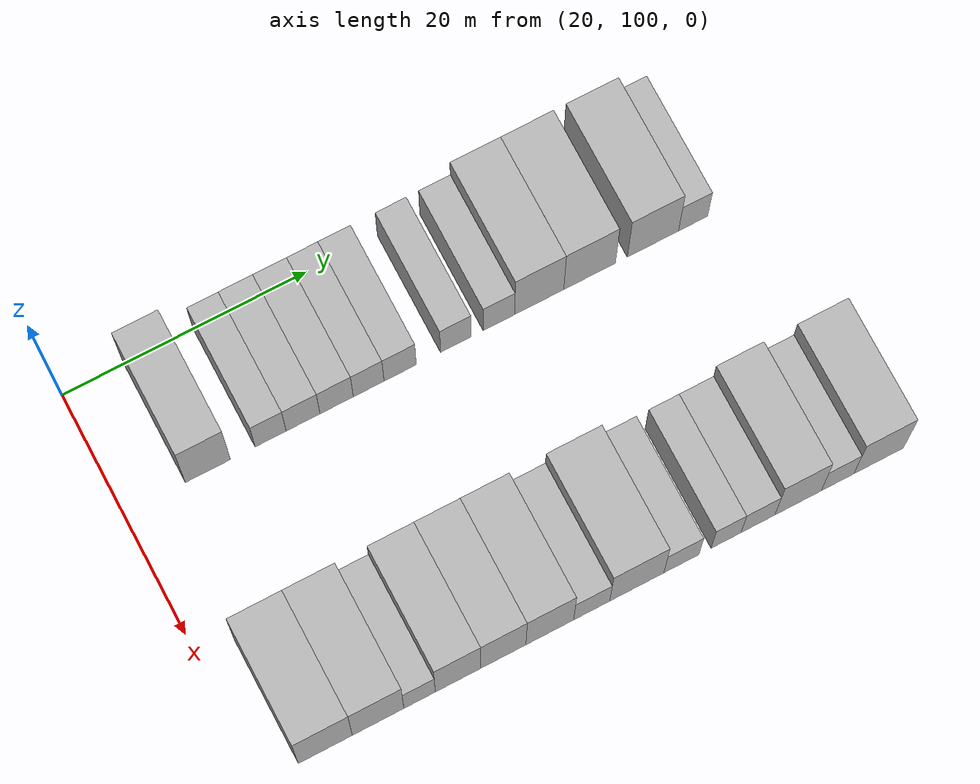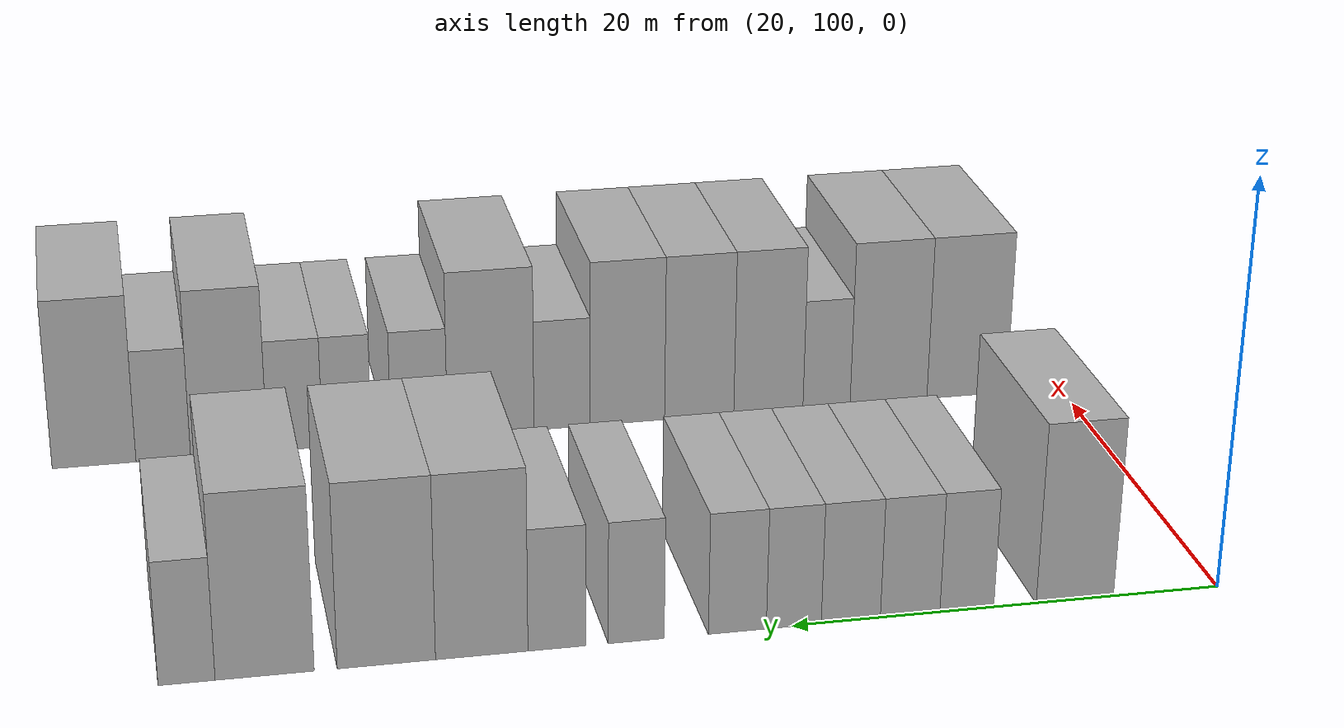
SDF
<sdf version="1.6">
 <world name="default">
  <model name="building_81">
   <static>1</static>
   <pose>25.0000 106.8358 0 0.000000 0.000000 0.000000</pose>
   <link name="link">
    <pose>0 0 4.50 0 0 0</pose>
    <collision name="collision"><geometry><box><size>10.0000 3.6615 9.0000</size></box></geometry></collision>
    <visual name="visual">
     <cast_shadows>0</cast_shadows>
     <geometry><box><size>10.0000 3.6615 9.0000</size></box></geometry>
     <material>
      <script>
       <uri>model://HANNAS_wall/materials/scripts</uri>
       <uri>model://HANNAS_wall/materials/textures</uri>
       <name>vrc/HANNAS_wall</name>
      </script>
     </material>
    </visual>
   </link>
  </model>
  <model name="building_82">
   <static>1</static>
   <pose>25.0000 111.9291 0 0.000000 0.000000 0.000000</pose>
   <link name="link">
    <pose>0 0 3.00 0 0 0</pose>
    <collision name="collision"><geometry><box><size>10.0000 2.5251 6.0000</size></box></geometry></collision>
    <visual name="visual">
     <cast_shadows>0</cast_shadows>
     <geometry><box><size>10.0000 2.5251 6.0000</size></box></geometry>
     <material>
      <script>
       <uri>model://HANNAS_wall/materials/scripts</uri>
       <uri>model://HANNAS_wall/materials/textures</uri>
       <name>vrc/HANNAS_wall</name>
      </script>
     </material>
    </visual>
   </link>
  </model>
  <model name="building_83">
   <static>1</static>
   <pose>25.0000 114.5763 0 0.000000 0.000000 0.000000</pose>
   <link name="link">
    <pose>0 0 3.00 0 0 0</pose>
    <collision name="collision"><geometry><box><size>10.0000 2.7694 6.0000</size></box></geometry></collision>
    <visual name="visual">
     <cast_shadows>0</cast_shadows>
     <geometry><box><size>10.0000 2.7694 6.0000</size></box></geometry>
     <material>
      <script>
       <uri>model://HANNAS_wall/materials/scripts</uri>
       <uri>model://HANNAS_wall/materials/textures</uri>
       <name>vrc/HANNAS_wall</name>
      </script>
     </material>
    </visual>
   </link>
  </model>
  <model name="building_84">
   <static>1</static>
   <pose>25.0000 117.3255 0 0.000000 0.000000 0.000000</pose>
   <link name="link">
    <pose>0 0 3.00 0 0 0</pose>
    <collision name="collision"><geometry><box><size>10.0000 2.7290 6.0000</size></box></geometry></collision>
    <visual name="visual">
     <cast_shadows>0</cast_shadows>
     <geometry><box><size>10.0000 2.7290 6.0000</size></box></geometry>
     <material>
      <script>
       <uri>model://HANNAS_wall/materials/scripts</uri>
       <uri>model://HANNAS_wall/materials/textures</uri>
       <name>vrc/HANNAS_wall</name>
      </script>
     </material>
    </visual>
   </link>
  </model>
  <model name="building_85">
   <static>1</static>
   <pose>25.0000 119.9507 0 0.000000 0.000000 0.000000</pose>
   <link name="link">
    <pose>0 0 3.00 0 0 0</pose>
    <collision name="collision"><geometry><box><size>10.0000 2.5216 6.0000</size></box></geometry></collision>
    <visual name="visual">
     <cast_shadows>0</cast_shadows>
     <geometry><box><size>10.0000 2.5216 6.0000</size></box></geometry>
     <material>
      <script>
       <uri>model://HANNAS_wall/materials/scripts</uri>
       <uri>model://HANNAS_wall/materials/textures</uri>
       <name>vrc/HANNAS_wall</name>
      </script>
     </material>
    </visual>
   </link>
  </model>
  <model name="building_86">
   <static>1</static>
   <pose>25.0000 122.5331 0 0.000000 0.000000 0.000000</pose>
   <link name="link">
    <pose>0 0 3.00 0 0 0</pose>
    <collision name="collision"><geometry><box><size>10.0000 2.6431 6.0000</size></box></geometry></collision>
    <visual name="visual">
     <cast_shadows>0</cast_shadows>
     <geometry><box><size>10.0000 2.6431 6.0000</size></box></geometry>
     <material>
      <script>
       <uri>model://HANNAS_wall/materials/scripts</uri>
       <uri>model://HANNAS_wall/materials/textures</uri>
       <name>vrc/HANNAS_wall</name>
      </script>
     </material>
    </visual>
   </link>
  </model>
  <model name="building_87">
   <static>1</static>
   <pose>25.0000 127.1151 0 0.000000 0.000000 0.000000</pose>
   <link name="link">
    <pose>0 0 3.00 0 0 0</pose>
    <collision name="collision"><geometry><box><size>10.0000 2.5209 6.0000</size></box></geometry></collision>
    <visual name="visual">
     <cast_shadows>0</cast_shadows>
     <geometry><box><size>10.0000 2.5209 6.0000</size></box></geometry>
     <material>
      <script>
       <uri>model://HANNAS_wall/materials/scripts</uri>
       <uri>model://HANNAS_wall/materials/textures</uri>
       <name>vrc/HANNAS_wall</name>
      </script>
     </material>
    </visual>
   </link>
  </model>
  <model name="building_88">
   <static>1</static>
   <pose>25.0000 130.6685 0 0.000000 0.000000 0.000000</pose>
   <link name="link">
    <pose>0 0 3.00 0 0 0</pose>
    <collision name="collision"><geometry><box><size>10.0000 2.5859 6.0000</size></box></geometry></collision>
    <visual name="visual">
     <cast_shadows>0</cast_shadows>
     <geometry><box><size>10.0000 2.5859 6.0000</size></box></geometry>
     <material>
      <script>
       <uri>model://HANNAS_wall/materials/scripts</uri>
       <uri>model://HANNAS_wall/materials/textures</uri>
       <name>vrc/HANNAS_wall</name>
      </script>
     </material>
    </visual>
   </link>
  </model>
  <model name="building_89">
   <static>1</static>
   <pose>25.0000 134.0063 0 0.000000 0.000000 0.000000</pose>
   <link name="link">
    <pose>0 0 4.50 0 0 0</pose>
    <collision name="collision"><geometry><box><size>10.0000 4.0898 9.0000</size></box></geometry></collision>
    <visual name="visual">
     <cast_shadows>0</cast_shadows>
     <geometry><box><size>10.0000 4.0898 9.0000</size></box></geometry>
     <material>
      <script>
       <uri>model://HANNAS_wall/materials/scripts</uri>
       <uri>model://HANNAS_wall/materials/textures</uri>
       <name>vrc/HANNAS_wall</name>
      </script>
     </material>
    </visual>
   </link>
  </model>
  <model name="building_90">
   <static>1</static>
   <pose>25.0000 138.2001 0 0.000000 0.000000 0.000000</pose>
   <link name="link">
    <pose>0 0 4.50 0 0 0</pose>
    <collision name="collision"><geometry><box><size>10.0000 4.2977 9.0000</size></box></geometry></collision>
    <visual name="visual">
     <cast_shadows>0</cast_shadows>
     <geometry><box><size>10.0000 4.2977 9.0000</size></box></geometry>
     <material>
      <script>
       <uri>model://HANNAS_wall/materials/scripts</uri>
       <uri>model://HANNAS_wall/materials/textures</uri>
       <name>vrc/HANNAS_wall</name>
      </script>
     </material>
    </visual>
   </link>
  </model>
  <model name="building_91">
   <static>1</static>
   <pose>25.0000 143.4867 0 0.000000 0.000000 0.000000</pose>
   <link name="link">
    <pose>0 0 4.50 0 0 0</pose>
    <collision name="collision"><geometry><box><size>10.0000 4.2757 9.0000</size></box></geometry></collision>
    <visual name="visual">
     <cast_shadows>0</cast_shadows>
     <geometry><box><size>10.0000 4.2757 9.0000</size></box></geometry>
     <material>
      <script>
       <uri>model://HANNAS_wall/materials/scripts</uri>
       <uri>model://HANNAS_wall/materials/textures</uri>
       <name>vrc/HANNAS_wall</name>
      </script>
     </material>
    </visual>
   </link>
  </model>
  <model name="building_92">
   <static>1</static>
   <pose>25.0000 146.8455 0 0.000000 0.000000 0.000000</pose>
   <link name="link">
    <pose>0 0 3.00 0 0 0</pose>
    <collision name="collision"><geometry><box><size>10.0000 2.4419 6.0000</size></box></geometry></collision>
    <visual name="visual">
     <cast_shadows>0</cast_shadows>
     <geometry><box><size>10.0000 2.4419 6.0000</size></box></geometry>
     <material>
      <script>
       <uri>model://HANNAS_wall/materials/scripts</uri>
       <uri>model://HANNAS_wall/materials/textures</uri>
       <name>vrc/HANNAS_wall</name>
      </script>
     </material>
    </visual>
   </link>
  </model>
  <model name="building_182">
   <static>1</static>
   <pose>47.0000 105.0922 0 0.000000 0.000000 0.000000</pose>
   <link name="link">
    <pose>0 0 4.50 0 0 0</pose>
    <collision name="collision"><geometry><box><size>10.0000 4.3245 9.0000</size></box></geometry></collision>
    <visual name="visual">
     <cast_shadows>0</cast_shadows>
     <geometry><box><size>10.0000 4.3245 9.0000</size></box></geometry>
     <material>
      <script>
       <uri>model://HANNAS_wall/materials/scripts</uri>
       <uri>model://HANNAS_wall/materials/textures</uri>
       <name>vrc/HANNAS_wall</name>
      </script>
     </material>
    </visual>
   </link>
  </model>
  <model name="building_183">
   <static>1</static>
   <pose>47.0000 109.3235 0 0.000000 0.000000 0.000000</pose>
   <link name="link">
    <pose>0 0 4.50 0 0 0</pose>
    <collision name="collision"><geometry><box><size>10.0000 4.1381 9.0000</size></box></geometry></collision>
    <visual name="visual">
     <cast_shadows>0</cast_shadows>
     <geometry><box><size>10.0000 4.1381 9.0000</size></box></geometry>
     <material>
      <script>
       <uri>model://HANNAS_wall/materials/scripts</uri>
       <uri>model://HANNAS_wall/materials/textures</uri>
       <name>vrc/HANNAS_wall</name>
      </script>
     </material>
    </visual>
   </link>
  </model>
  <model name="building_184">
   <static>1</static>
   <pose>47.0000 112.6541 0 0.000000 0.000000 0.000000</pose>
   <link name="link">
    <pose>0 0 3.00 0 0 0</pose>
    <collision name="collision"><geometry><box><size>10.0000 2.5231 6.0000</size></box></geometry></collision>
    <visual name="visual">
     <cast_shadows>0</cast_shadows>
     <geometry><box><size>10.0000 2.5231 6.0000</size></box></geometry>
     <material>
      <script>
       <uri>model://HANNAS_wall/materials/scripts</uri>
       <uri>model://HANNAS_wall/materials/textures</uri>
       <name>vrc/HANNAS_wall</name>
      </script>
     </material>
    </visual>
   </link>
  </model>
  <model name="building_185">
   <static>1</static>
   <pose>47.0000 115.7520 0 0.000000 0.000000 0.000000</pose>
   <link name="link">
    <pose>0 0 4.50 0 0 0</pose>
    <collision name="collision"><geometry><box><size>10.0000 3.6728 9.0000</size></box></geometry></collision>
    <visual name="visual">
     <cast_shadows>0</cast_shadows>
     <geometry><box><size>10.0000 3.6728 9.0000</size></box></geometry>
     <material>
      <script>
       <uri>model://HANNAS_wall/materials/scripts</uri>
       <uri>model://HANNAS_wall/materials/textures</uri>
       <name>vrc/HANNAS_wall</name>
      </script>
     </material>
    </visual>
   </link>
  </model>
  <model name="building_186">
   <static>1</static>
   <pose>47.0000 119.4121 0 0.000000 0.000000 0.000000</pose>
   <link name="link">
    <pose>0 0 4.50 0 0 0</pose>
    <collision name="collision"><geometry><box><size>10.0000 3.6474 9.0000</size></box></geometry></collision>
    <visual name="visual">
     <cast_shadows>0</cast_shadows>
     <geometry><box><size>10.0000 3.6474 9.0000</size></box></geometry>
     <material>
      <script>
       <uri>model://HANNAS_wall/materials/scripts</uri>
       <uri>model://HANNAS_wall/materials/textures</uri>
       <name>vrc/HANNAS_wall</name>
      </script>
     </material>
    </visual>
   </link>
  </model>
  <model name="building_187">
   <static>1</static>
   <pose>47.0000 123.1741 0 0.000000 0.000000 0.000000</pose>
   <link name="link">
    <pose>0 0 4.50 0 0 0</pose>
    <collision name="collision"><geometry><box><size>10.0000 3.8766 9.0000</size></box></geometry></collision>
    <visual name="visual">
     <cast_shadows>0</cast_shadows>
     <geometry><box><size>10.0000 3.8766 9.0000</size></box></geometry>
     <material>
      <script>
       <uri>model://HANNAS_wall/materials/scripts</uri>
       <uri>model://HANNAS_wall/materials/textures</uri>
       <name>vrc/HANNAS_wall</name>
      </script>
     </material>
    </visual>
   </link>
  </model>
  <model name="building_188">
   <static>1</static>
   <pose>47.0000 126.5732 0 0.000000 0.000000 0.000000</pose>
   <link name="link">
    <pose>0 0 3.00 0 0 0</pose>
    <collision name="collision"><geometry><box><size>10.0000 2.9216 6.0000</size></box></geometry></collision>
    <visual name="visual">
     <cast_shadows>0</cast_shadows>
     <geometry><box><size>10.0000 2.9216 6.0000</size></box></geometry>
     <material>
      <script>
       <uri>model://HANNAS_wall/materials/scripts</uri>
       <uri>model://HANNAS_wall/materials/textures</uri>
       <name>vrc/HANNAS_wall</name>
      </script>
     </material>
    </visual>
   </link>
  </model>
  <model name="building_189">
   <static>1</static>
   <pose>47.0000 130.2532 0 0.000000 0.000000 0.000000</pose>
   <link name="link">
    <pose>0 0 4.50 0 0 0</pose>
    <collision name="collision"><geometry><box><size>10.0000 4.4385 9.0000</size></box></geometry></collision>
    <visual name="visual">
     <cast_shadows>0</cast_shadows>
     <geometry><box><size>10.0000 4.4385 9.0000</size></box></geometry>
     <material>
      <script>
       <uri>model://HANNAS_wall/materials/scripts</uri>
       <uri>model://HANNAS_wall/materials/textures</uri>
       <name>vrc/HANNAS_wall</name>
      </script>
     </material>
    </visual>
   </link>
  </model>
  <model name="building_190">
   <static>1</static>
   <pose>47.0000 133.9115 0 0.000000 0.000000 0.000000</pose>
   <link name="link">
    <pose>0 0 3.00 0 0 0</pose>
    <collision name="collision"><geometry><box><size>10.0000 2.8781 6.0000</size></box></geometry></collision>
    <visual name="visual">
     <cast_shadows>0</cast_shadows>
     <geometry><box><size>10.0000 2.8781 6.0000</size></box></geometry>
     <material>
      <script>
       <uri>model://HANNAS_wall/materials/scripts</uri>
       <uri>model://HANNAS_wall/materials/textures</uri>
       <name>vrc/HANNAS_wall</name>
      </script>
     </material>
    </visual>
   </link>
  </model>
  <model name="building_191">
   <static>1</static>
   <pose>47.0000 137.5790 0 0.000000 0.000000 0.000000</pose>
   <link name="link">
    <pose>0 0 3.00 0 0 0</pose>
    <collision name="collision"><geometry><box><size>10.0000 2.4567 6.0000</size></box></geometry></collision>
    <visual name="visual">
     <cast_shadows>0</cast_shadows>
     <geometry><box><size>10.0000 2.4567 6.0000</size></box></geometry>
     <material>
      <script>
       <uri>model://HANNAS_wall/materials/scripts</uri>
       <uri>model://HANNAS_wall/materials/textures</uri>
       <name>vrc/HANNAS_wall</name>
      </script>
     </material>
    </visual>
   </link>
  </model>
  <model name="building_192">
   <static>1</static>
   <pose>47.0000 140.2006 0 0.000000 0.000000 0.000000</pose>
   <link name="link">
    <pose>0 0 3.00 0 0 0</pose>
    <collision name="collision"><geometry><box><size>10.0000 2.7865 6.0000</size></box></geometry></collision>
    <visual name="visual">
     <cast_shadows>0</cast_shadows>
     <geometry><box><size>10.0000 2.7865 6.0000</size></box></geometry>
     <material>
      <script>
       <uri>model://HANNAS_wall/materials/scripts</uri>
       <uri>model://HANNAS_wall/materials/textures</uri>
       <name>vrc/HANNAS_wall</name>
      </script>
     </material>
    </visual>
   </link>
  </model>
  <model name="building_193">
   <static>1</static>
   <pose>47.0000 143.5077 0 0.000000 0.000000 0.000000</pose>
   <link name="link">
    <pose>0 0 4.50 0 0 0</pose>
    <collision name="collision"><geometry><box><size>10.0000 3.8277 9.0000</size></box></geometry></collision>
    <visual name="visual">
     <cast_shadows>0</cast_shadows>
     <geometry><box><size>10.0000 3.8277 9.0000</size></box></geometry>
     <material>
      <script>
       <uri>model://HANNAS_wall/materials/scripts</uri>
       <uri>model://HANNAS_wall/materials/textures</uri>
       <name>vrc/HANNAS_wall</name>
      </script>
     </material>
    </visual>
   </link>
  </model>
  <model name="building_194">
   <static>1</static>
   <pose>47.0000 146.7729 0 0.000000 0.000000 0.000000</pose>
   <link name="link">
    <pose>0 0 3.00 0 0 0</pose>
    <collision name="collision"><geometry><box><size>10.0000 2.7027 6.0000</size></box></geometry></collision>
    <visual name="visual">
     <cast_shadows>0</cast_shadows>
     <geometry><box><size>10.0000 2.7027 6.0000</size></box></geometry>
     <material>
      <script>
       <uri>model://HANNAS_wall/materials/scripts</uri>
       <uri>model://HANNAS_wall/materials/textures</uri>
       <name>vrc/HANNAS_wall</name>
      </script>
     </material>
    </visual>
   </link>
  </model>
  <model name="building_195">
   <static>1</static>
   <pose>47.0000 150.1848 0 0.000000 0.000000 0.000000</pose>
   <link name="link">
    <pose>0 0 4.50 0 0 0</pose>
    <collision name="collision"><geometry><box><size>10.0000 4.1210 9.0000</size></box></geometry></collision>
    <visual name="visual">
     <cast_shadows>0</cast_shadows>
     <geometry><box><size>10.0000 4.1210 9.0000</size></box></geometry>
     <material>
      <script>
       <uri>model://HANNAS_wall/materials/scripts</uri>
       <uri>model://HANNAS_wall/materials/textures</uri>
       <name>vrc/HANNAS_wall</name>
      </script>
     </material>
    </visual>
   </link>
  </model>
 </world>
</sdf>
